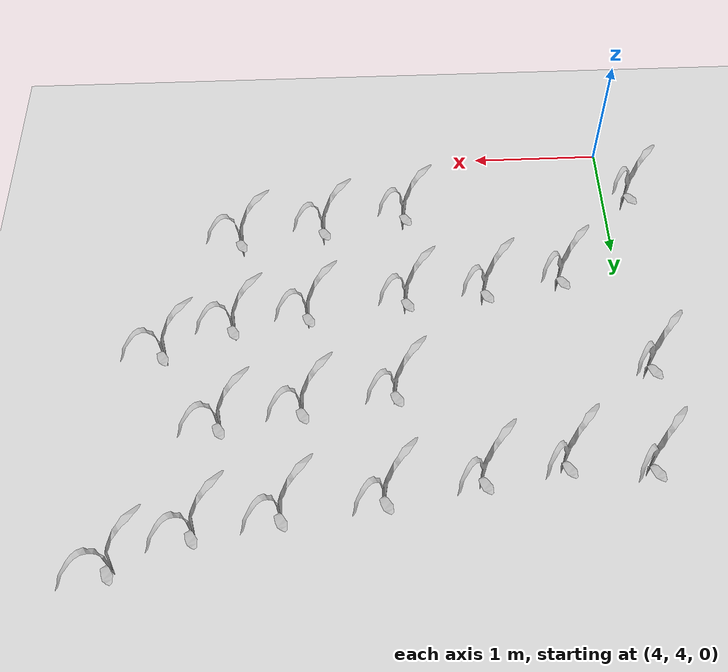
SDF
<sdf version="1.7">
 <world name="default">
  <model name="ground_plane">
   <static>1</static>
   <link name="link">
    <collision name="collision">
     <geometry><plane><normal>0 0 1</normal><size>100 100</size></plane></geometry>
     <surface>
      <contact><collide_bitmask>65535</collide_bitmask></contact>
      <friction><ode><mu>100</mu><mu2>50</mu2></ode></friction>
     </surface>
    </collision>
    <visual name="visual">
     <cast_shadows>0</cast_shadows>
     <geometry><plane><normal>0 0 1</normal><size>100 100</size></plane></geometry>
     <material>
      <script><uri>file://media/materials/scripts/gazebo.material</uri><name>Gazebo/Grey</name></script>
     </material>
    </visual>
   </link>
  </model>
  <model name="field_row_full_double">
   <model name="maize_02_clone_109">
    <pose>0.457287 1.62983 0.000249 0 -0 0</pose>
    <link name="maize_02_link">
     <inertial>
      <pose>0 0 0.01 0 -0 0</pose>
      <mass>0.3</mass>
      <inertia>
       <ixx>0.00334167</ixx>
       <ixy>0</ixy>
       <ixz>0</ixz>
       <iyy>0.00334167</iyy>
       <iyz>0</iyz>
       <izz>1.66667e-05</izz>
      </inertia>
      <pose>0 0 0.1 0 -0 0</pose>
     </inertial>
     <collision name="collision">
      <pose>0 0 0.2 0 -0 0</pose>
      <geometry><box><size>0.02 0.02 0.4</size></box></geometry>
      <surface><friction><ode><mu>10</mu><mu2>10</mu2></ode></friction></surface>
     </collision>
     <visual name="visual">
      <geometry>
       <mesh><uri>model://maize_02/meshes/maize_02.dae</uri><scale>0.683166 0.683166 0.683166</scale></mesh>
      </geometry>
     </visual>
    </link>
   </model>
   <model name="maize_02_clone_110">
    <pose>-1.27971 1.35083 0.000249 0 -0 0</pose>
    <link name="maize_02_link">
     <inertial>
      <pose>0 0 0.01 0 -0 0</pose>
      <mass>0.3</mass>
      <inertia>
       <ixx>0.00334167</ixx>
       <ixy>0</ixy>
       <ixz>0</ixz>
       <iyy>0.00334167</iyy>
       <iyz>0</iyz>
       <izz>1.66667e-05</izz>
      </inertia>
      <pose>0 0 0.1 0 -0 0</pose>
     </inertial>
     <collision name="collision">
      <pose>0 0 0.2 0 -0 0</pose>
      <geometry><box><size>0.02 0.02 0.4</size></box></geometry>
      <surface><friction><ode><mu>10</mu><mu2>10</mu2></ode></friction></surface>
     </collision>
     <visual name="visual">
      <geometry>
       <mesh><uri>model://maize_02/meshes/maize_02.dae</uri><scale>0.683166 0.683166 0.683166</scale></mesh>
      </geometry>
     </visual>
    </link>
   </model>
   <model name="maize_02_clone_116">
    <pose>0.412287 2.42183 0.000249 0 -0 0</pose>
    <link name="maize_02_link">
     <inertial>
      <pose>0 0 0.01 0 -0 0</pose>
      <mass>0.3</mass>
      <inertia>
       <ixx>0.00334167</ixx>
       <ixy>0</ixy>
       <ixz>0</ixz>
       <iyy>0.00334167</iyy>
       <iyz>0</iyz>
       <izz>1.66667e-05</izz>
      </inertia>
      <pose>0 0 0.1 0 -0 0</pose>
     </inertial>
     <collision name="collision">
      <pose>0 0 0.2 0 -0 0</pose>
      <geometry><box><size>0.02 0.02 0.4</size></box></geometry>
      <surface><friction><ode><mu>10</mu><mu2>10</mu2></ode></friction></surface>
     </collision>
     <visual name="visual">
      <geometry>
       <mesh><uri>model://maize_02/meshes/maize_02.dae</uri><scale>0.683166 0.683166 0.683166</scale></mesh>
      </geometry>
     </visual>
    </link>
   </model>
   <model name="maize_02_clone_117">
    <pose>-0.163713 2.32283 0.000249 0 -0 0</pose>
    <link name="maize_02_link">
     <inertial>
      <pose>0 0 0.01 0 -0 0</pose>
      <mass>0.3</mass>
      <inertia>
       <ixx>0.00334167</ixx>
       <ixy>0</ixy>
       <ixz>0</ixz>
       <iyy>0.00334167</iyy>
       <iyz>0</iyz>
       <izz>1.66667e-05</izz>
      </inertia>
      <pose>0 0 0.1 0 -0 0</pose>
     </inertial>
     <collision name="collision">
      <pose>0 0 0.2 0 -0 0</pose>
      <geometry><box><size>0.02 0.02 0.4</size></box></geometry>
      <surface><friction><ode><mu>10</mu><mu2>10</mu2></ode></friction></surface>
     </collision>
     <visual name="visual">
      <geometry>
       <mesh><uri>model://maize_02/meshes/maize_02.dae</uri><scale>0.683166 0.683166 0.683166</scale></mesh>
      </geometry>
     </visual>
    </link>
   </model>
   <model name="maize_02_clone_118">
    <pose>-0.721713 2.17883 0.000249 0 -0 0</pose>
    <link name="maize_02_link">
     <inertial>
      <pose>0 0 0.01 0 -0 0</pose>
      <mass>0.3</mass>
      <inertia>
       <ixx>0.00334167</ixx>
       <ixy>0</ixy>
       <ixz>0</ixz>
       <iyy>0.00334167</iyy>
       <iyz>0</iyz>
       <izz>1.66667e-05</izz>
      </inertia>
      <pose>0 0 0.1 0 -0 0</pose>
     </inertial>
     <collision name="collision">
      <pose>0 0 0.2 0 -0 0</pose>
      <geometry><box><size>0.02 0.02 0.4</size></box></geometry>
      <surface><friction><ode><mu>10</mu><mu2>10</mu2></ode></friction></surface>
     </collision>
     <visual name="visual">
      <geometry>
       <mesh><uri>model://maize_02/meshes/maize_02.dae</uri><scale>0.683166 0.683166 0.683166</scale></mesh>
      </geometry>
     </visual>
    </link>
   </model>
   <model name="maize_02_clone_129">
    <pose>-1.32471 2.91683 0.000249 0 -0 0</pose>
    <link name="maize_02_link">
     <inertial>
      <pose>0 0 0.01 0 -0 0</pose>
      <mass>0.3</mass>
      <inertia>
       <ixx>0.00334167</ixx>
       <ixy>0</ixy>
       <ixz>0</ixz>
       <iyy>0.00334167</iyy>
       <iyz>0</iyz>
       <izz>1.66667e-05</izz>
      </inertia>
      <pose>0 0 0.1 0 -0 0</pose>
     </inertial>
     <collision name="collision">
      <pose>0 0 0.2 0 -0 0</pose>
      <geometry><box><size>0.02 0.02 0.4</size></box></geometry>
      <surface><friction><ode><mu>10</mu><mu2>10</mu2></ode></friction></surface>
     </collision>
     <visual name="visual">
      <geometry>
       <mesh><uri>model://maize_02/meshes/maize_02.dae</uri><scale>0.683166 0.683166 0.683166</scale></mesh>
      </geometry>
     </visual>
    </link>
   </model>
   <model name="maize_02_clone_130">
    <pose>0.457288 3.20483 0.000249 0 -0 0</pose>
    <link name="maize_02_link">
     <inertial>
      <pose>0 0 0.01 0 -0 0</pose>
      <mass>0.3</mass>
      <inertia>
       <ixx>0.00334167</ixx>
       <ixy>0</ixy>
       <ixz>0</ixz>
       <iyy>0.00334167</iyy>
       <iyz>0</iyz>
       <izz>1.66667e-05</izz>
      </inertia>
      <pose>0 0 0.1 0 -0 0</pose>
     </inertial>
     <collision name="collision">
      <pose>0 0 0.2 0 -0 0</pose>
      <geometry><box><size>0.02 0.02 0.4</size></box></geometry>
      <surface><friction><ode><mu>10</mu><mu2>10</mu2></ode></friction></surface>
     </collision>
     <visual name="visual">
      <geometry>
       <mesh><uri>model://maize_02/meshes/maize_02.dae</uri><scale>0.683166 0.683166 0.683166</scale></mesh>
      </geometry>
     </visual>
    </link>
   </model>
   <model name="maize_02_clone_131">
    <pose>0.493288 3.98783 0.000249 0 -0 0</pose>
    <link name="maize_02_link">
     <inertial>
      <pose>0 0 0.01 0 -0 0</pose>
      <mass>0.3</mass>
      <inertia>
       <ixx>0.00334167</ixx>
       <ixy>0</ixy>
       <ixz>0</ixz>
       <iyy>0.00334167</iyy>
       <iyz>0</iyz>
       <izz>1.66667e-05</izz>
      </inertia>
      <pose>0 0 0.1 0 -0 0</pose>
     </inertial>
     <collision name="collision">
      <pose>0 0 0.2 0 -0 0</pose>
      <geometry><box><size>0.02 0.02 0.4</size></box></geometry>
      <surface><friction><ode><mu>10</mu><mu2>10</mu2></ode></friction></surface>
     </collision>
     <visual name="visual">
      <geometry>
       <mesh><uri>model://maize_02/meshes/maize_02.dae</uri><scale>0.683166 0.683166 0.683166</scale></mesh>
      </geometry>
     </visual>
    </link>
   </model>
   <model name="maize_02_clone_132">
    <pose>-0.145712 3.82583 0.000249 0 -0 0</pose>
    <link name="maize_02_link">
     <inertial>
      <pose>0 0 0.01 0 -0 0</pose>
      <mass>0.3</mass>
      <inertia>
       <ixx>0.00334167</ixx>
       <ixy>0</ixy>
       <ixz>0</ixz>
       <iyy>0.00334167</iyy>
       <iyz>0</iyz>
       <izz>1.66667e-05</izz>
      </inertia>
      <pose>0 0 0.1 0 -0 0</pose>
     </inertial>
     <collision name="collision">
      <pose>0 0 0.2 0 -0 0</pose>
      <geometry><box><size>0.02 0.02 0.4</size></box></geometry>
      <surface><friction><ode><mu>10</mu><mu2>10</mu2></ode></friction></surface>
     </collision>
     <visual name="visual">
      <geometry>
       <mesh><uri>model://maize_02/meshes/maize_02.dae</uri><scale>0.683166 0.683166 0.683166</scale></mesh>
      </geometry>
     </visual>
    </link>
   </model>
   <model name="maize_02_clone_133">
    <pose>-0.694712 3.69083 0.000249 0 -0 0</pose>
    <link name="maize_02_link">
     <inertial>
      <pose>0 0 0.01 0 -0 0</pose>
      <mass>0.3</mass>
      <inertia>
       <ixx>0.00334167</ixx>
       <ixy>0</ixy>
       <ixz>0</ixz>
       <iyy>0.00334167</iyy>
       <iyz>0</iyz>
       <izz>1.66667e-05</izz>
      </inertia>
      <pose>0 0 0.1 0 -0 0</pose>
     </inertial>
     <collision name="collision">
      <pose>0 0 0.2 0 -0 0</pose>
      <geometry><box><size>0.02 0.02 0.4</size></box></geometry>
      <surface><friction><ode><mu>10</mu><mu2>10</mu2></ode></friction></surface>
     </collision>
     <visual name="visual">
      <geometry>
       <mesh><uri>model://maize_02/meshes/maize_02.dae</uri><scale>0.683166 0.683166 0.683166</scale></mesh>
      </geometry>
     </visual>
    </link>
   </model>
   <model name="maize_02_clone_134">
    <pose>-1.27071 3.69083 0.000249 0 -0 0</pose>
    <link name="maize_02_link">
     <inertial>
      <pose>0 0 0.01 0 -0 0</pose>
      <mass>0.3</mass>
      <inertia>
       <ixx>0.00334167</ixx>
       <ixy>0</ixy>
       <ixz>0</ixz>
       <iyy>0.00334167</iyy>
       <iyz>0</iyz>
       <izz>1.66667e-05</izz>
      </inertia>
      <pose>0 0 0.1 0 -0 0</pose>
     </inertial>
     <collision name="collision">
      <pose>0 0 0.2 0 -0 0</pose>
      <geometry><box><size>0.02 0.02 0.4</size></box></geometry>
      <surface><friction><ode><mu>10</mu><mu2>10</mu2></ode></friction></surface>
     </collision>
     <visual name="visual">
      <geometry>
       <mesh><uri>model://maize_02/meshes/maize_02.dae</uri><scale>0.683166 0.683166 0.683166</scale></mesh>
      </geometry>
     </visual>
    </link>
   </model>
   <model name="maize_02_clone_170">
    <pose>1.06596 1.79577 0.000249 0 -0 0</pose>
    <link name="maize_02_link">
     <inertial>
      <pose>0 0 0.01 0 -0 0</pose>
      <mass>0.3</mass>
      <inertia>
       <ixx>0.00334167</ixx>
       <ixy>0</ixy>
       <ixz>0</ixz>
       <iyy>0.00334167</iyy>
       <iyz>0</iyz>
       <izz>1.66667e-05</izz>
      </inertia>
      <pose>0 0 0.1 0 -0 0</pose>
     </inertial>
     <collision name="collision">
      <pose>0 0 0.2 0 -0 0</pose>
      <geometry><box><size>0.02 0.02 0.4</size></box></geometry>
      <surface><friction><ode><mu>10</mu><mu2>10</mu2></ode></friction></surface>
     </collision>
     <visual name="visual">
      <geometry>
       <mesh><uri>model://maize_02/meshes/maize_02.dae</uri><scale>0.683166 0.683166 0.683166</scale></mesh>
      </geometry>
     </visual>
    </link>
   </model>
   <model name="maize_02_clone_171">
    <pose>1.67978 1.93409 0.000249 0 -0 0</pose>
    <link name="maize_02_link">
     <inertial>
      <pose>0 0 0.01 0 -0 0</pose>
      <mass>0.3</mass>
      <inertia>
       <ixx>0.00334167</ixx>
       <ixy>0</ixy>
       <ixz>0</ixz>
       <iyy>0.00334167</iyy>
       <iyz>0</iyz>
       <izz>1.66667e-05</izz>
      </inertia>
      <pose>0 0 0.1 0 -0 0</pose>
     </inertial>
     <collision name="collision">
      <pose>0 0 0.2 0 -0 0</pose>
      <geometry><box><size>0.02 0.02 0.4</size></box></geometry>
      <surface><friction><ode><mu>10</mu><mu2>10</mu2></ode></friction></surface>
     </collision>
     <visual name="visual">
      <geometry>
       <mesh><uri>model://maize_02/meshes/maize_02.dae</uri><scale>0.683166 0.683166 0.683166</scale></mesh>
      </geometry>
     </visual>
    </link>
   </model>
   <model name="maize_02_clone_181">
    <pose>2.11205 2.9456 0.000249 0 -0 0</pose>
    <link name="maize_02_link">
     <inertial>
      <pose>0 0 0.01 0 -0 0</pose>
      <mass>0.3</mass>
      <inertia>
       <ixx>0.00334167</ixx>
       <ixy>0</ixy>
       <ixz>0</ixz>
       <iyy>0.00334167</iyy>
       <iyz>0</iyz>
       <izz>1.66667e-05</izz>
      </inertia>
      <pose>0 0 0.1 0 -0 0</pose>
     </inertial>
     <collision name="collision">
      <pose>0 0 0.2 0 -0 0</pose>
      <geometry><box><size>0.02 0.02 0.4</size></box></geometry>
      <surface><friction><ode><mu>10</mu><mu2>10</mu2></ode></friction></surface>
     </collision>
     <visual name="visual">
      <geometry>
       <mesh><uri>model://maize_02/meshes/maize_02.dae</uri><scale>0.683166 0.683166 0.683166</scale></mesh>
      </geometry>
     </visual>
    </link>
   </model>
   <model name="maize_02_clone_182">
    <pose>1.6452 2.71218 0.000249 0 -0 0</pose>
    <link name="maize_02_link">
     <inertial>
      <pose>0 0 0.01 0 -0 0</pose>
      <mass>0.3</mass>
      <inertia>
       <ixx>0.00334167</ixx>
       <ixy>0</ixy>
       <ixz>0</ixz>
       <iyy>0.00334167</iyy>
       <iyz>0</iyz>
       <izz>1.66667e-05</izz>
      </inertia>
      <pose>0 0 0.1 0 -0 0</pose>
     </inertial>
     <collision name="collision">
      <pose>0 0 0.2 0 -0 0</pose>
      <geometry><box><size>0.02 0.02 0.4</size></box></geometry>
      <surface><friction><ode><mu>10</mu><mu2>10</mu2></ode></friction></surface>
     </collision>
     <visual name="visual">
      <geometry>
       <mesh><uri>model://maize_02/meshes/maize_02.dae</uri><scale>0.683166 0.683166 0.683166</scale></mesh>
      </geometry>
     </visual>
    </link>
   </model>
   <model name="maize_02_clone_183">
    <pose>1.11783 2.5825 0.000249 0 -0 0</pose>
    <link name="maize_02_link">
     <inertial>
      <pose>0 0 0.01 0 -0 0</pose>
      <mass>0.3</mass>
      <inertia>
       <ixx>0.00334167</ixx>
       <ixy>0</ixy>
       <ixz>0</ixz>
       <iyy>0.00334167</iyy>
       <iyz>0</iyz>
       <izz>1.66667e-05</izz>
      </inertia>
      <pose>0 0 0.1 0 -0 0</pose>
     </inertial>
     <collision name="collision">
      <pose>0 0 0.2 0 -0 0</pose>
      <geometry><box><size>0.02 0.02 0.4</size></box></geometry>
      <surface><friction><ode><mu>10</mu><mu2>10</mu2></ode></friction></surface>
     </collision>
     <visual name="visual">
      <geometry>
       <mesh><uri>model://maize_02/meshes/maize_02.dae</uri><scale>0.683166 0.683166 0.683166</scale></mesh>
      </geometry>
     </visual>
    </link>
   </model>
   <model name="maize_02_clone_184">
    <pose>1.0919 3.36058 0.000249 0 -0 0</pose>
    <link name="maize_02_link">
     <inertial>
      <pose>0 0 0.01 0 -0 0</pose>
      <mass>0.3</mass>
      <inertia>
       <ixx>0.00334167</ixx>
       <ixy>0</ixy>
       <ixz>0</ixz>
       <iyy>0.00334167</iyy>
       <iyz>0</iyz>
       <izz>1.66667e-05</izz>
      </inertia>
      <pose>0 0 0.1 0 -0 0</pose>
     </inertial>
     <collision name="collision">
      <pose>0 0 0.2 0 -0 0</pose>
      <geometry><box><size>0.02 0.02 0.4</size></box></geometry>
      <surface><friction><ode><mu>10</mu><mu2>10</mu2></ode></friction></surface>
     </collision>
     <visual name="visual">
      <geometry>
       <mesh><uri>model://maize_02/meshes/maize_02.dae</uri><scale>0.683166 0.683166 0.683166</scale></mesh>
      </geometry>
     </visual>
    </link>
   </model>
   <model name="maize_02_clone_185">
    <pose>1.6452 3.49891 0.000249 0 -0 0</pose>
    <link name="maize_02_link">
     <inertial>
      <pose>0 0 0.01 0 -0 0</pose>
      <mass>0.3</mass>
      <inertia>
       <ixx>0.00334167</ixx>
       <ixy>0</ixy>
       <ixz>0</ixz>
       <iyy>0.00334167</iyy>
       <iyz>0</iyz>
       <izz>1.66667e-05</izz>
      </inertia>
      <pose>0 0 0.1 0 -0 0</pose>
     </inertial>
     <collision name="collision">
      <pose>0 0 0.2 0 -0 0</pose>
      <geometry><box><size>0.02 0.02 0.4</size></box></geometry>
      <surface><friction><ode><mu>10</mu><mu2>10</mu2></ode></friction></surface>
     </collision>
     <visual name="visual">
      <geometry>
       <mesh><uri>model://maize_02/meshes/maize_02.dae</uri><scale>0.683166 0.683166 0.683166</scale></mesh>
      </geometry>
     </visual>
    </link>
   </model>
   <model name="maize_02_clone_195">
    <pose>2.1985 4.51906 0.000249 0 -0 0</pose>
    <link name="maize_02_link">
     <inertial>
      <pose>0 0 0.01 0 -0 0</pose>
      <mass>0.3</mass>
      <inertia>
       <ixx>0.00334167</ixx>
       <ixy>0</ixy>
       <ixz>0</ixz>
       <iyy>0.00334167</iyy>
       <iyz>0</iyz>
       <izz>1.66667e-05</izz>
      </inertia>
      <pose>0 0 0.1 0 -0 0</pose>
     </inertial>
     <collision name="collision">
      <pose>0 0 0.2 0 -0 0</pose>
      <geometry><box><size>0.02 0.02 0.4</size></box></geometry>
      <surface><friction><ode><mu>10</mu><mu2>10</mu2></ode></friction></surface>
     </collision>
     <visual name="visual">
      <geometry>
       <mesh><uri>model://maize_02/meshes/maize_02.dae</uri><scale>0.683166 0.683166 0.683166</scale></mesh>
      </geometry>
     </visual>
    </link>
   </model>
   <model name="maize_02_clone_196">
    <pose>1.71436 4.26834 0.000249 0 -0 0</pose>
    <link name="maize_02_link">
     <inertial>
      <pose>0 0 0.01 0 -0 0</pose>
      <mass>0.3</mass>
      <inertia>
       <ixx>0.00334167</ixx>
       <ixy>0</ixy>
       <ixz>0</ixz>
       <iyy>0.00334167</iyy>
       <iyz>0</iyz>
       <izz>1.66667e-05</izz>
      </inertia>
      <pose>0 0 0.1 0 -0 0</pose>
     </inertial>
     <collision name="collision">
      <pose>0 0 0.2 0 -0 0</pose>
      <geometry><box><size>0.02 0.02 0.4</size></box></geometry>
      <surface><friction><ode><mu>10</mu><mu2>10</mu2></ode></friction></surface>
     </collision>
     <visual name="visual">
      <geometry>
       <mesh><uri>model://maize_02/meshes/maize_02.dae</uri><scale>0.683166 0.683166 0.683166</scale></mesh>
      </geometry>
     </visual>
    </link>
   </model>
   <model name="maize_02_clone_197">
    <pose>1.16106 4.13002 0.000249 0 -0 0</pose>
    <link name="maize_02_link">
     <inertial>
      <pose>0 0 0.01 0 -0 0</pose>
      <mass>0.3</mass>
      <inertia>
       <ixx>0.00334167</ixx>
       <ixy>0</ixy>
       <ixz>0</ixz>
       <iyy>0.00334167</iyy>
       <iyz>0</iyz>
       <izz>1.66667e-05</izz>
      </inertia>
      <pose>0 0 0.1 0 -0 0</pose>
     </inertial>
     <collision name="collision">
      <pose>0 0 0.2 0 -0 0</pose>
      <geometry><box><size>0.02 0.02 0.4</size></box></geometry>
      <surface><friction><ode><mu>10</mu><mu2>10</mu2></ode></friction></surface>
     </collision>
     <visual name="visual">
      <geometry>
       <mesh><uri>model://maize_02/meshes/maize_02.dae</uri><scale>0.683166 0.683166 0.683166</scale></mesh>
      </geometry>
     </visual>
    </link>
   </model>
   <static>0</static>
   <pose>5.06014 3.21474 0.082285 6e-06 -5e-05 -0.080663</pose>
  </model>
 </world>
</sdf>
